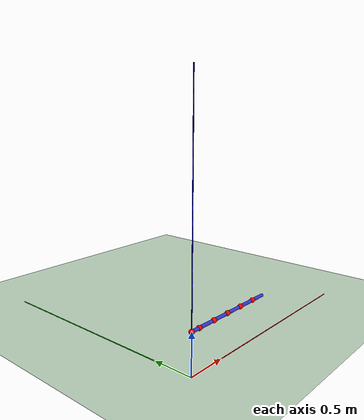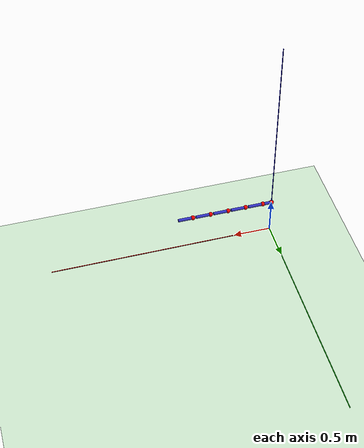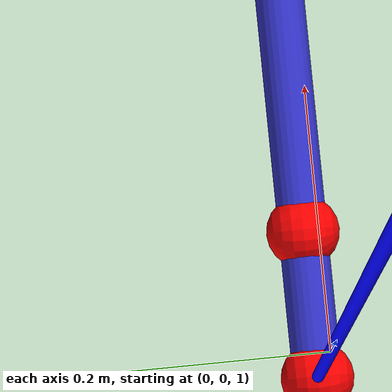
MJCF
<?xml version="1.0" ?>
<mujoco model="pendulum_5_reformatted">
  <default>
    <geom rgba=".8 .6 .4 1"/>
  </default>
  <option timestep="0.0002"/>

  <asset>
    <texture type="skybox" builtin="gradient" rgb1="1 1 1" rgb2=".6 .8 1" width="256" height="256"/>
  </asset>
  <worldbody>
    <!-- x,y,z axis -->
    <!-- 좌표축 표현용 geom -->
    <geom name="x_axis" type="cylinder" fromto="0 0 0 3 0 0" size="0.005" rgba="1 0 0 1"/>
    <geom name="y_axis" type="cylinder" fromto="0 0 0 0 3 0" size="0.005" rgba="0 1 0 1"/>
    <geom name="z_axis" type="cylinder" fromto="0 0 0 0 0 3" size="0.005" rgba="0 0 1 1"/>

    <!-- 카메라 추가 -->
    <camera name="fixed_cam" pos="2 0 1" xyaxes="1 0 0 0 0 1"/>
    <!-- 지면 추가 -->
    <geom type="plane" size="5 5 0.1" rgba="0.8 0.9 0.8 1"/>
    <!-- 조명 추가 -->
    <light pos="0 0 5" dir="0 0 -1" diffuse="0.5 0.5 0.5"/>

    <body name="rfe_1" pos="0 0 0.5" quat="0.707388 0.706825 0 0">
      <inertial pos="0.06 0 0" quat="0.5 0.5 0.5 0.5" mass="0.00919481" diaginertia="1.10545e-05 1.10545e-05 4.13767e-08"/>
      <joint name="active_joint" pos="0 0 0" axis="0 0 1" range="-3.14159 3.14159" actuatorfrcrange="-100 100"  stiffness="6.1850105367549055" damping="0.2650718801466388"/>
      <!-- 조인트 시각화용 구 -->
      <geom type="sphere" size="0.03" pos="0 0 0" rgba="1 0 0 1"/>
      <!-- 링크 원통 -->
      <geom type="cylinder" fromto="0 0 0 0.1 0 0" size="0.02" rgba="0.2 0.2 0.8 1"/>

      <body name="rfe_2" pos="0.12 0 0">
        <inertial pos="0.12 0 0" quat="0.5 0.5 0.5 0.5" mass="0.0183896" diaginertia="8.83116e-05 8.83116e-05 8.27533e-08"/>
        <joint name="sde_joint_1" pos="0 0 0" axis="0 0 1" range="-3.14159 3.14159" actuatorfrcrange="-100 100"   stiffness="6.1850105367549055" damping="0.2650718801466388"/>
        <!-- 조인트 시각화용 구 -->
        <geom type="sphere" size="0.03" pos="0 0 0" rgba="1 0 0 1"/>
        <!-- 링크 원통 -->
        <geom type="cylinder" fromto="0 0 0 0.2 0 0" size="0.02" rgba="0.2 0.2 0.8 1"/>

        <body name="rfe_3" pos="0.24 0 0">
          <inertial pos="0.12 0 0" quat="0.5 0.5 0.5 0.5" mass="0.0183896" diaginertia="8.83116e-05 8.83116e-05 8.27533e-08"/>
          <joint name="sde_joint_2" pos="0 0 0" axis="0 0 1" range="-3.14159 3.14159" actuatorfrcrange="-100 100"  stiffness="6.1850105367549055" damping="0.2650718801466388"/>
          <!-- 조인트 시각화용 구 -->
          <geom type="sphere" size="0.03" pos="0 0 0" rgba="1 0 0 1"/>
          <!-- 링크 원통 -->
          <geom type="cylinder" fromto="0 0 0 0.2 0 0" size="0.02" rgba="0.2 0.2 0.8 1"/>

          <body name="rfe_4" pos="0.24 0 0">
            <inertial pos="0.12 0 0" quat="0.5 0.5 0.5 0.5" mass="0.0183896" diaginertia="8.83116e-05 8.83116e-05 8.27533e-08"/>
            <joint name="sde_joint_3" pos="0 0 0" axis="0 0 1" range="-3.14159 3.14159" actuatorfrcrange="-100 100"  stiffness="6.1850105367549055" damping="0.2650718801466388"/>
            <!-- 조인트 시각화용 구 -->
            <geom type="sphere" size="0.03" pos="0 0 0" rgba="1 0 0 1"/>
            <!-- 링크 원통 -->
            <geom type="cylinder" fromto="0 0 0 0.2 0 0" size="0.02" rgba="0.2 0.2 0.8 1"/>

            <body name="rfe_5" pos="0.24 0 0">
              <inertial pos="0.12 0 0" quat="0.5 0.5 0.5 0.5" mass="0.0183896" diaginertia="8.83116e-05 8.83116e-05 8.27533e-08"/>
              <joint name="sde_joint_4" pos="0 0 0" axis="0 0 1" range="-3.14159 3.14159" actuatorfrcrange="-100 100"  stiffness="6.1850105367549055" damping="0.2650718801466388"/>
              <!-- 조인트 시각화용 구 -->
              <geom type="sphere" size="0.03" pos="0 0 0" rgba="1 0 0 1"/>
              <!-- 링크 원통 -->
              <geom type="cylinder" fromto="0 0 0 0.2 0 0" size="0.02" rgba="0.2 0.2 0.8 1"/>

              <body name="rfe_6" pos="0.24 0 0">
                <inertial pos="0.06 0 0" quat="0.5 0.5 0.5 0.5" mass="0.00919481" diaginertia="1.10545e-05 1.10545e-05 4.13767e-08"/>
                <joint name="sde_joint_5" pos="0 0 0" axis="0 0 1" range="-3.14159 3.14159" actuatorfrcrange="-100 100"  stiffness="6.1850105367549055" damping="0.2650718801466388"/>
                <!-- 조인트 시각화용 구 -->
                <geom type="sphere" size="0.03" pos="0 0 0" rgba="1 0 0 1"/>
                <!-- 링크 원통 -->
                <geom type="cylinder" fromto="0 0 0 0.2 0 0" size="0.02" rgba="0.2 0.2 0.8 1"/>

              </body>

            </body>

          </body>

        </body>

      </body>

    </body>

  </worldbody>

</mujoco>
